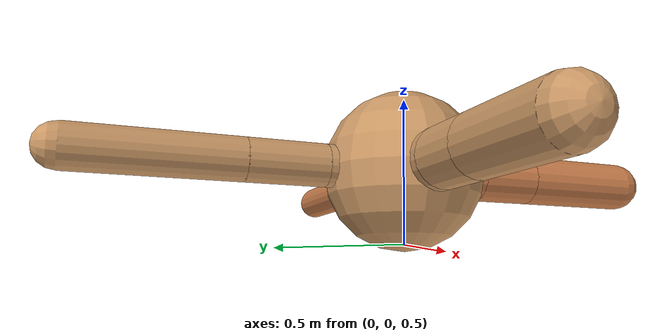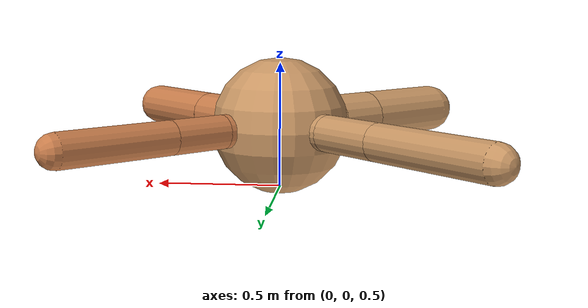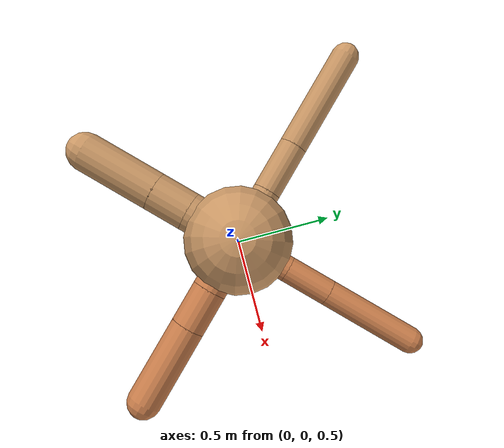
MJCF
<?xml version="1.0" ?>
<mujoco model="ant">

	<compiler angle="degree" coordinate="local" inertiafromgeom="true"/>

	<option integrator="RK4" timestep="0.01"/>

	<custom>

		<numeric data="0.0 0.0 0.55 1.0 0.0 0.0 0.0 0.0 1.0 0.0 -1.0 0.0 -1.0 0.0 1.0" name="init_qpos"/>

	</custom>

	<default>

		<joint armature="1" damping="1" limited="true"/>

		<geom conaffinity="0" condim="3" density="5.0" friction="1.5 0.1 0.1" margin="0.01" rgba="0.8 0.6 0.4 1"/>

	</default>

	<worldbody>

		<body name="torso" pos="0 0 0.75">

			<geom name="torso_geom" pos="0 0 0" size="0.27349796166029766" type="sphere"/>

			<!--joint armature="0" damping="0" limited="false" margin="0.01" name="root" pos="0 0 0" type="free"/-->

			<body name="front_left_leg" pos="0 0 0">

				<geom fromto="0 0 0 0.2 0.2 0" name="aux_1_geom" size="0.0656831330884059" type="capsule" rgba=".8 .5 .3 1"/>

				<body name="aux_1" pos="0.2 0.2 0">

					<joint axis="0 0 1" name="hip_1" pos="0.0 0.0 0.0" range="-40 40" type="hinge"/>

					<geom fromto="0 0 0 0.16288430672469886 0.16288430672469886 0" name="left_leg_geom" size="0.0656831330884059" type="capsule" rgba=".8 .5 .3 1"/>

					<body pos="0.16288430672469886 0.16288430672469886 0" name="front_left_foot">

						<joint axis="-1 1 0" name="ankle_1" pos="0.0 0.0 0.0" range="30 100" type="hinge"/>

						<geom fromto="0 0 0 0.3257686134493977 0.3257686134493977 0" name="left_ankle_geom" size="0.0656831330884059" type="capsule" rgba=".8 .5 .3 1"/>

					</body>

				</body>

			</body>

			<body name="front_right_leg" pos="0 0 0">

				<geom fromto="0 0 0 -0.2 0.2 0" name="aux_2_geom" size="0.07088498308103627" type="capsule"/>

				<body name="aux_2" pos="-0.2 0.2 0">

					<joint axis="0 0 1" name="hip_2" pos="0.0 0.0 0.0" range="-40 40" type="hinge"/>

					<geom fromto="0 0 0 -0.18540685011213465 0.18540685011213465 0" name="right_leg_geom" size="0.07088498308103627" type="capsule"/>

					<body pos="-0.18540685011213465 0.18540685011213465 0" name="front_right_foot">

						<joint axis="1 1 0" name="ankle_2" pos="0.0 0.0 0.0" range="-100 -30" type="hinge"/>

						<geom fromto="0 0 0 -0.3708137002242693 0.3708137002242693 0" name="right_ankle_geom" size="0.07088498308103627" type="capsule"/>

					</body>

				</body>

			</body>

			<body name="left_back_leg" pos="0 0 0">

				<geom fromto="0 0 0 -0.2 -0.2 0" name="aux_3_geom" size="0.10080109349767309" type="capsule"/>

				<body name="aux_3" pos="-0.2 -0.2 0">

					<joint axis="0 0 1" name="hip_3" pos="0.0 0.0 0.0" range="-40 40" type="hinge"/>

					<geom fromto="0 0 0 -0.14061945963406816 -0.14061945963406816 0" name="back_leg_geom" size="0.10080109349767309" type="capsule"/>

					<body pos="-0.14061945963406816 -0.14061945963406816 0" name="left_back_foot">

						<joint axis="-1 1 0" name="ankle_3" pos="0.0 0.0 0.0" range="-100 -30" type="hinge"/>

						<geom fromto="0 0 0 -0.2812389192681363 -0.2812389192681363 0" name="third_ankle_geom" size="0.10080109349767309" type="capsule"/>

					</body>

				</body>

			</body>

			<body name="right_back_leg" pos="0 0 0">

				<geom fromto="0 0 0 0.2 -0.2 0" name="aux_4_geom" size="0.08712055411631457" type="capsule" rgba=".8 .5 .3 1"/>

				<body name="aux_4" pos="0.2 -0.2 0">

					<joint axis="0 0 1" name="hip_4" pos="0.0 0.0 0.0" range="-40 40" type="hinge"/>

					<geom fromto="0 0 0 0.1486666761601428 -0.1486666761601428 0" name="rightback_leg_geom" size="0.08712055411631457" type="capsule" rgba=".8 .5 .3 1"/>

					<body pos="0.1486666761601428 -0.1486666761601428 0" name="right_back_foot">

						<joint axis="1 1 0" name="ankle_4" pos="0.0 0.0 0.0" range="30 100" type="hinge"/>

						<geom fromto="0 0 0 0.2973333523202856 -0.2973333523202856 0" name="fourth_ankle_geom" size="0.08712055411631457" type="capsule" rgba=".8 .5 .3 1"/>

					</body>

				</body>

			</body>

		</body>

	</worldbody>

	<actuator>

		<motor ctrllimited="true" ctrlrange="-1.0 1.0" joint="hip_4" gear="150"/>

		<motor ctrllimited="true" ctrlrange="-1.0 1.0" joint="ankle_4" gear="150"/>

		<motor ctrllimited="true" ctrlrange="-1.0 1.0" joint="hip_1" gear="150"/>

		<motor ctrllimited="true" ctrlrange="-1.0 1.0" joint="ankle_1" gear="150"/>

		<motor ctrllimited="true" ctrlrange="-1.0 1.0" joint="hip_2" gear="150"/>

		<motor ctrllimited="true" ctrlrange="-1.0 1.0" joint="ankle_2" gear="150"/>

		<motor ctrllimited="true" ctrlrange="-1.0 1.0" joint="hip_3" gear="150"/>

		<motor ctrllimited="true" ctrlrange="-1.0 1.0" joint="ankle_3" gear="150"/>

	</actuator>

</mujoco>
